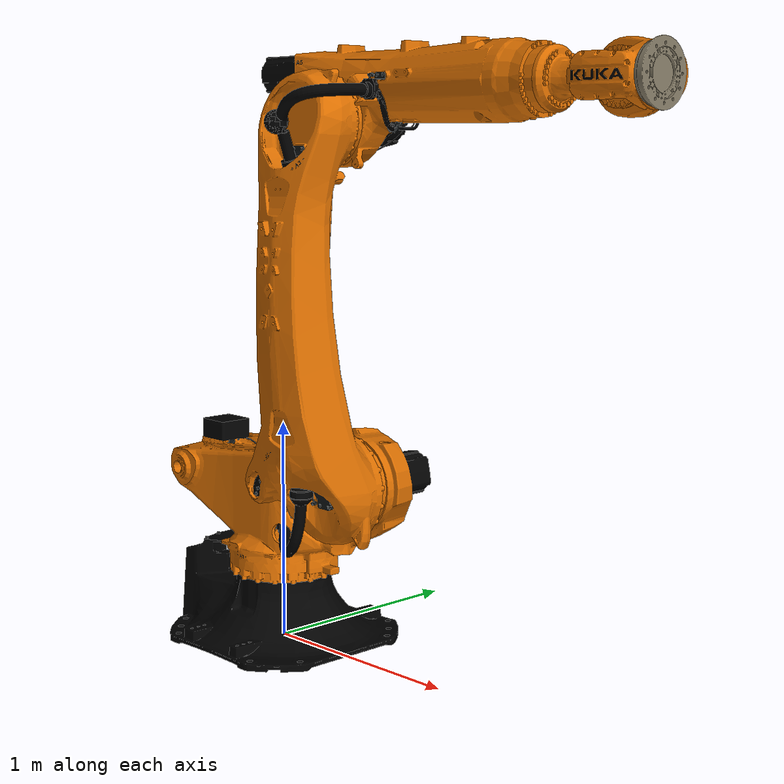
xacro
<?xml version="1.0" encoding="UTF-8"?>
<robot xmlns:xacro="http://www.ros.org/wiki/xacro" name="kr340_r3400_2">
  <!-- Import urdf files  -->
  <xacro:include filename="$(find kuka_fortec_support)/urdf/kr340_r3400_2_macro.xacro"/>
  <xacro:include filename="$(find kuka_fortec_support)/urdf/kr_fortec_ros2_control_macro.xacro"/>
  <!-- Basic arguments  -->
  <xacro:arg name="prefix" default=""/>
  <xacro:arg name="is_async" default="false"/>
  <xacro:arg name="async_thread_priority" default="69"/>
  <xacro:arg name="async_affinity" default="[]"/>
  <xacro:arg name="x" default="0"/>
  <xacro:arg name="y" default="0"/>
  <xacro:arg name="z" default="0"/>
  <xacro:arg name="roll" default="0"/>
  <xacro:arg name="pitch" default="0"/>
  <xacro:arg name="yaw" default="0"/>
  <!-- kroshu-specific arguments -->
  <xacro:arg name="driver_version" default="rsi_only"/>
  <xacro:arg name="mode" default="hardware"/>
  <xacro:arg name="use_gpio" default="false"/>
  <xacro:arg name="roundtrip_time" default="0"/>
  <xacro:arg name="client_ip" default="0.0.0.0"/>
  <xacro:arg name="client_port" default="59152"/>
  <xacro:arg name="mxa_client_port" default="1337"/>
  <xacro:arg name="controller_ip" default="0.0.0.0"/>
  <xacro:arg name="verify_robot_model" default="true"/>
  <xacro:arg name="rsi_xml_config_file" default=""/>
  <xacro:arg name="read_current" default="false"/>
  <xacro:arg name="async_scheduling_policy" default="detached"/>
  <xacro:kuka_fortec_ros2_control name="$(arg prefix)kr340_r3400_2" driver_version="$(arg driver_version)" client_ip="$(arg client_ip)" client_port="$(arg client_port)" mxa_client_port="$(arg mxa_client_port)" controller_ip="$(arg controller_ip)" prefix="$(arg prefix)" mode="$(arg mode)" use_gpio="$(arg use_gpio)" roundtrip_time="$(arg roundtrip_time)" verify_robot_model="$(arg verify_robot_model)" rsi_xml_config_file="$(arg rsi_xml_config_file)" is_async="$(arg is_async)" async_scheduling_policy="$(arg async_scheduling_policy)" async_thread_priority="$(arg async_thread_priority)" async_affinity="$(arg async_affinity)" read_current="$(arg read_current)">
    <ext_axes_ros2_control_joints/>
  </xacro:kuka_fortec_ros2_control>
  <!-- world link -->
  <link name="world"/>
  <!-- robot links, joints -->
  <xacro:kuka_kr340_r3400_2_robot prefix="$(arg prefix)" package_name="kuka_fortec_support"/>
  <!-- default world - base_link joint -->
  <joint name="$(arg prefix)world-base_link" type="fixed">
    <parent link="world"/>
    <child link="$(arg prefix)base_link"/>
    <origin xyz="$(arg x) $(arg y) $(arg z)" rpy="$(arg roll) $(arg pitch) $(arg yaw)"/>
  </joint>
</robot>

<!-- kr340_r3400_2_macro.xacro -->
<robot xmlns:xacro="http://wiki.ros.org/xacro">
  <xacro:macro name="kuka_kr340_r3400_2_robot" params="prefix package_name">
    <link name="${prefix}base_link">
      <collision>
        <origin rpy="0 0 0" xyz="0.0 0.0 0.0"/>
        <geometry>
          <mesh filename="package://${package_name}/meshes/kr340_r3400_2/collision/base_link.stl"/>
        </geometry>
      </collision>
      <visual>
        <origin rpy="0 0 0" xyz="0.0 0.0 0.0"/>
        <geometry>
          <mesh filename="package://${package_name}/meshes/kr340_r3400_2/visual/base_link.dae"/>
        </geometry>
      </visual>
    </link>
    <link name="${prefix}link_1">
      <collision>
        <origin rpy="-3.141592653589793 0 0" xyz="0.0 0.0 0.303"/>
        <geometry>
          <mesh filename="package://${package_name}/meshes/kr340_r3400_2/collision/link_1.stl"/>
        </geometry>
      </collision>
      <visual>
        <origin rpy="-3.141592653589793 0 0" xyz="0.0 0.0 0.303"/>
        <geometry>
          <mesh filename="package://${package_name}/meshes/kr340_r3400_2/visual/link_1.dae"/>
        </geometry>
      </visual>
    </link>
    <link name="${prefix}link_2">
      <collision>
        <origin rpy="-1.5707963267948966 0 -1.5707963267948932" xyz="-0.8 0.5 -0.035"/>
        <geometry>
          <mesh filename="package://${package_name}/meshes/kr340_r3400_2/collision/link_2.stl"/>
        </geometry>
      </collision>
      <visual>
        <origin rpy="-1.5707963267948966 0 -1.5707963267948932" xyz="-0.8 0.5 -0.035"/>
        <geometry>
          <mesh filename="package://${package_name}/meshes/kr340_r3400_2/visual/link_2.dae"/>
        </geometry>
      </visual>
    </link>
    <link name="${prefix}link_3">
      <collision>
        <origin rpy="1.5707963267948966 0 1.5707963267948941" xyz="-2.35 -0.5 0.1528"/>
        <geometry>
          <mesh filename="package://${package_name}/meshes/kr340_r3400_2/collision/link_3.stl"/>
        </geometry>
      </collision>
      <visual>
        <origin rpy="1.5707963267948966 0 1.5707963267948941" xyz="-2.35 -0.5 0.1528"/>
        <geometry>
          <mesh filename="package://${package_name}/meshes/kr340_r3400_2/visual/link_3.dae"/>
        </geometry>
      </visual>
    </link>
    <link name="${prefix}link_4">
      <collision>
        <origin rpy="1.539501831833349 1.5707963267948115 -1.6020908217564445" xyz="2.5 0.0 1.5598"/>
        <geometry>
          <mesh filename="package://${package_name}/meshes/kr340_r3400_2/collision/link_4.stl"/>
        </geometry>
      </collision>
      <visual>
        <origin rpy="1.539501831833349 1.5707963267948115 -1.6020908217564445" xyz="2.5 0.0 1.5598"/>
        <geometry>
          <mesh filename="package://${package_name}/meshes/kr340_r3400_2/visual/link_4.dae"/>
        </geometry>
      </visual>
    </link>
    <link name="${prefix}link_5">
      <collision>
        <origin rpy="-1.5707963267948977 0 -1.5707963267948957" xyz="-2.5 1.842 -0.0425"/>
        <geometry>
          <mesh filename="package://${package_name}/meshes/kr340_r3400_2/collision/link_5.stl"/>
        </geometry>
      </collision>
      <visual>
        <origin rpy="-1.5707963267948977 0 -1.5707963267948957" xyz="-2.5 1.842 -0.0425"/>
        <geometry>
          <mesh filename="package://${package_name}/meshes/kr340_r3400_2/visual/link_5.dae"/>
        </geometry>
      </visual>
    </link>
    <link name="${prefix}link_6">
      <collision>
        <origin rpy="1.5655924967580737 1.5707963267948113 1.5655924967580737" xyz="-2.5 0.085 2.085"/>
        <geometry>
          <mesh filename="package://${package_name}/meshes/kr340_r3400_2/collision/link_6.stl"/>
        </geometry>
      </collision>
      <visual>
        <origin rpy="1.5655924967580737 1.5707963267948113 1.5655924967580737" xyz="-2.5 0.085 2.085"/>
        <geometry>
          <mesh filename="package://${package_name}/meshes/kr340_r3400_2/visual/link_6.dae"/>
        </geometry>
      </visual>
    </link>
    <joint name="${prefix}joint_1" type="revolute">
      <parent link="${prefix}base_link"/>
      <child link="${prefix}link_1"/>
      <origin rpy="3.141592653589793 0 0" xyz="0.0 0.0 0.303"/>
      <axis xyz="0 0 1"/>
      <limit effort="0.0" lower="-3.2288591161895095" upper="3.2288591161895095" velocity="1.7453292519943295"/>
    </joint>
    <joint name="${prefix}joint_2" type="revolute">
      <parent link="${prefix}link_1"/>
      <child link="${prefix}link_2"/>
      <origin rpy="-1.5707963267948968 1.5707963267948932 0" xyz="0.5 0.035 -0.497"/>
      <axis xyz="0 0 1"/>
      <limit effort="0.0" lower="-2.2689280275926285" upper="0.08726646259971647" velocity="1.3962634015954636"/>
    </joint>
    <joint name="${prefix}joint_3" type="revolute">
      <parent link="${prefix}link_2"/>
      <child link="${prefix}link_3"/>
      <origin rpy="-3.1415926535897927 0 0" xyz="1.55 0.0 0.1178"/>
      <axis xyz="0 0 1"/>
      <limit effort="0.0" lower="-1.9198621771937625" upper="2.827433388230814" velocity="1.5707963267948966"/>
    </joint>
    <joint name="${prefix}joint_4" type="revolute">
      <parent link="${prefix}link_3"/>
      <child link="${prefix}link_4"/>
      <origin rpy="-1.5707963267948963 0 3.141592653589793" xyz="0.15 1.0598 0.1528"/>
      <axis xyz="0 0 1"/>
      <limit effort="0.0" lower="-6.1086523819801535" upper="6.1086523819801535" velocity="1.5707963267948966"/>
    </joint>
    <joint name="${prefix}joint_5" type="revolute">
      <parent link="${prefix}link_4"/>
      <child link="${prefix}link_5"/>
      <origin rpy="1.5707963267948968 0 3.1415926535897927" xyz="0.0 0.0425 -0.2822"/>
      <axis xyz="0 0 1"/>
      <limit effort="0.0" lower="-2.0943951023931953" upper="2.0943951023931953" velocity="1.7453292519943295"/>
    </joint>
    <joint name="${prefix}joint_6" type="revolute">
      <parent link="${prefix}link_5"/>
      <child link="${prefix}link_6"/>
      <origin rpy="-1.570796326794897 0 0" xyz="0.0 -0.243 0.0425"/>
      <axis xyz="0 0 1"/>
      <limit effort="0.0" lower="-6.1086523819801535" upper="6.1086523819801535" velocity="2.8448866807507573"/>
    </joint>
    <link name="${prefix}base"/>
    <joint name="${prefix}base_link-base" type="fixed">
      <origin xyz="0 0 0" rpy="0 0 0"/>
      <parent link="${prefix}base_link"/>
      <child link="${prefix}base"/>
    </joint>
    <link name="${prefix}flange"/>
    <joint name="${prefix}link6-flange" type="fixed">
      <child link="${prefix}flange"/>
      <origin rpy="0.0 1.5707963267948966 0.0" xyz="0.0 0.0 0.0"/>
      <parent link="${prefix}link_6"/>
    </joint>
    <link name="${prefix}tool0"/>
    <joint name="${prefix}link6-tool0" type="fixed">
      <child link="${prefix}tool0"/>
      <origin rpy="3.141592653589793 1.2246467991473532E-16 3.141592653589793" xyz="0.0 0.0 0.0"/>
      <parent link="${prefix}link_6"/>
    </joint>
  </xacro:macro>
</robot>
